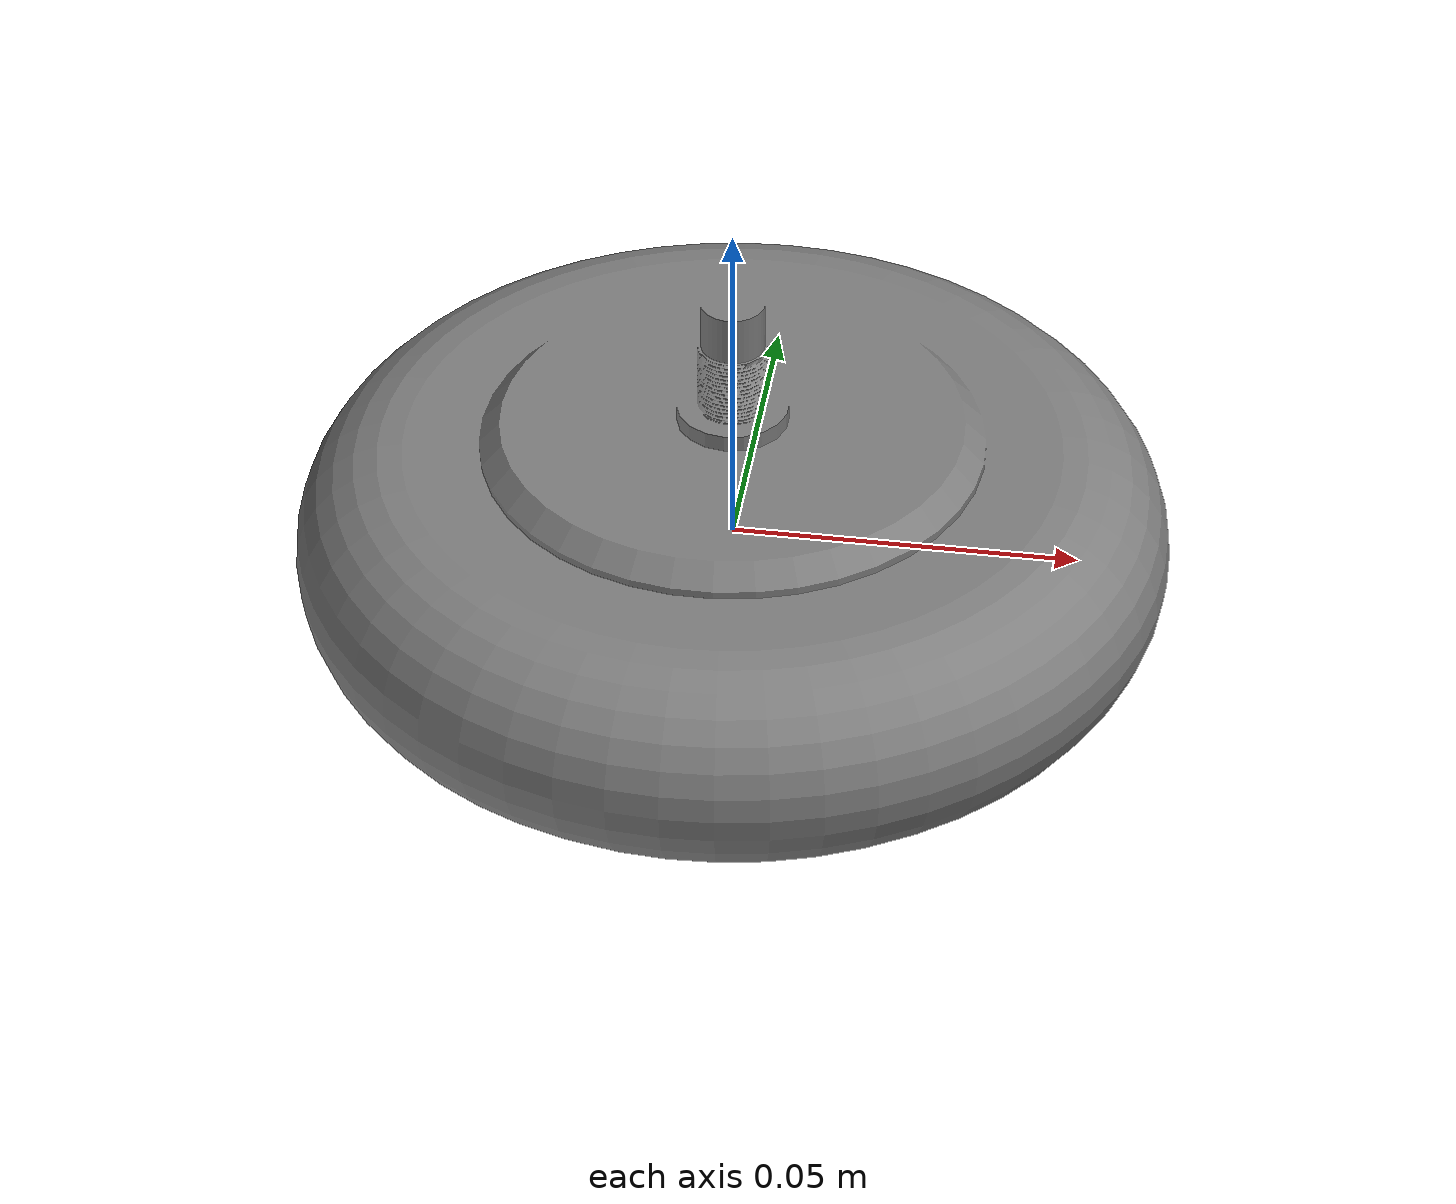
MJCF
<?xml version="1.0" encoding="UTF-8"?>
<mujoco>
<compiler meshdir="assets"/>
  <asset>
    <mesh file="t4____xiao_quan_xiang_lun_3_1.stl"/>
  </asset>

  <default>
  <default class="小全向轮3_default">
  <geom contype="0" conaffinity="0"/>
  </default>
  </default>

  <worldbody>
  <body name="小全向轮3_body" pos="0 0 0">
    <geom type="mesh" mesh="t4____xiao_quan_xiang_lun_3_1" mass="0.0001" class="小全向轮3_default"/>
  </body>
  </worldbody>
</mujoco>
